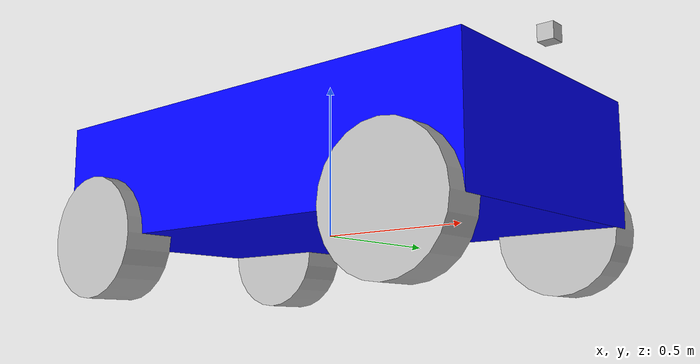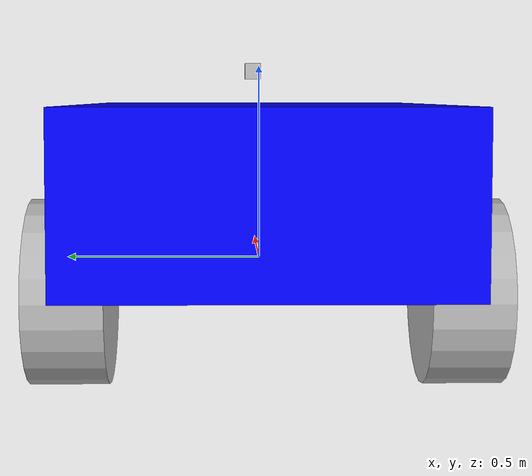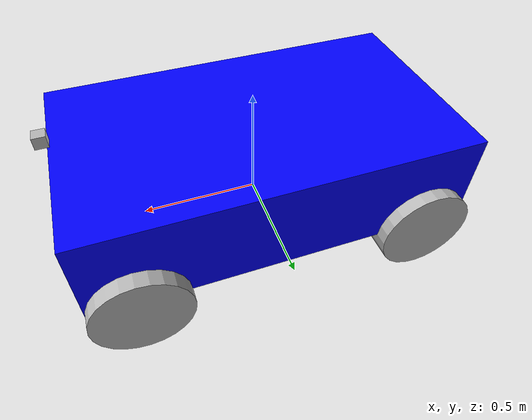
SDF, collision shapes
<?xml version="1.0" ?>
<sdf version="1.8">
  <model name="vehicle_blue" canonical_link="chassis">

    <!-- ================= CHASSIS ================= -->
    <link name="chassis">
      <pose>0 0 0.2 0 0 0</pose>

      <inertial>
        <mass>100</mass>
        <inertia>
          <ixx>2</ixx><ixy>0</ixy><ixz>0</ixz>
          <iyy>4</iyy><iyz>0</iyz><izz>5</izz>
        </inertia>
      </inertial>

      <visual name="chassis_visual">
        <geometry>
          <mesh>
            <!-- CHANGE filename if needed -->
            <uri>file:///home/deyung/ros2_newws/src/robot_description/description/meshes/new_car_chassis.stl</uri>
            <scale>0.5 0.5 0.5</scale>
          </mesh>
        </geometry>
        <material>
          <ambient>0 0 1 1</ambient>
          <diffuse>0 0 1 1</diffuse>
        </material>
      </visual>

      <!-- Use a simple collision for stability -->
      <collision name="chassis_collision">
        <geometry>
          <box>
            <size>1.6 0.9 0.4</size>
          </box>
        </geometry>
      </collision>

      <sensor name="imu_sensor" type="imu">
        <always_on>true</always_on>
        <update_rate>50</update_rate>
        <topic>imu</topic>
      </sensor>
    </link>

    <!-- ================= REAR WHEELS ================= -->
    <link name="rear_left_wheel">
      <pose>-0.6 0.42 0 1.5708 1.5708 0</pose>
      <inertial>
        <mass>7</mass>
        <inertia>
          <ixx>0.086</ixx><ixy>0</ixy><ixz>0</ixz>
          <iyy>0.086</iyy><iyz>0</iyz><izz>0.14</izz>
        </inertia>
      </inertial>

      <visual name="rear_left_wheel_visual">
        <geometry>
          <cylinder>
            <radius>0.2</radius>
            <length>0.17</length>
          </cylinder>
        </geometry>
      </visual>

      <collision name="rear_left_wheel_collision">
        <geometry>
          <cylinder>
            <radius>0.2</radius>
            <length>0.17</length>
          </cylinder>
        </geometry>
      </collision>
    </link>

    <link name="rear_right_wheel">
      <pose>-0.6 -0.42 0 1.5708 1.5708 0</pose>
      <inertial>
        <mass>7</mass>
        <inertia>
          <ixx>0.086</ixx><ixy>0</ixy><ixz>0</ixz>
          <iyy>0.086</iyy><iyz>0</iyz><izz>0.14</izz>
        </inertia>
      </inertial>

      <visual name="rear_right_wheel_visual">
        <geometry>
          <cylinder>
            <radius>0.2</radius>
            <length>0.17</length>
          </cylinder>
        </geometry>
      </visual>

      <collision name="rear_right_wheel_collision">
        <geometry>
          <cylinder>
            <radius>0.2</radius>
            <length>0.17</length>
          </cylinder>
        </geometry>
      </collision>
    </link>

    <!-- ================= FRONT STEERING LINKS ================= -->
    <link name="front_left_steering_link">
      <pose>0.6 0.45 0 0 0 0</pose>
      <inertial>
        <mass>0.5</mass>
        <inertia>
          <ixx>0.015</ixx><ixy>0</ixy><ixz>0</ixz>
          <iyy>0.025</iyy><iyz>0</iyz><izz>0.015</izz>
        </inertia>
      </inertial>

      <visual name="front_left_steering_link_visual">
        <geometry>
          <box><size>0.05 0.05 0.05</size></box>
        </geometry>
      </visual>

      <collision name="front_left_steering_link_collision">
        <geometry>
          <box><size>0.05 0.05 0.05</size></box>
        </geometry>
      </collision>
    </link>

    <link name="front_right_steering_link">
      <pose>0.6 -0.45 0 0 0 0</pose>
      <inertial>
        <mass>0.5</mass>
        <inertia>
          <ixx>0.015</ixx><ixy>0</ixy><ixz>0</ixz>
          <iyy>0.025</iyy><iyz>0</iyz><izz>0.015</izz>
        </inertia>
      </inertial>

      <visual name="front_right_steering_link_visual">
        <geometry>
          <box><size>0.05 0.05 0.05</size></box>
        </geometry>
      </visual>

      <collision name="front_right_steering_link_collision">
        <geometry>
          <box><size>0.05 0.05 0.05</size></box>
        </geometry>
      </collision>
    </link>

    <!-- ================= FRONT WHEELS ================= -->
    <link name="front_left_wheel">
      <!-- relative to steering link; keep centered on that link -->
      <pose>0.6 -0.45 0 1.5708 1.5708 0</pose>

      <inertial>
        <mass>5</mass>
        <inertia>
          <ixx>0.057</ixx><ixy>0</ixy><ixz>0</ixz>
          <iyy>0.057</iyy><iyz>0</iyz><izz>0.1</izz>
        </inertia>
      </inertial>

      <visual name="front_left_wheel_visual">
        <geometry>
          <cylinder>
            <radius>0.2</radius>
            <length>0.13</length>
          </cylinder>
        </geometry>
      </visual>

      <collision name="front_left_wheel_collision">
        <geometry>
          <cylinder>
            <radius>0.2</radius>
            <length>0.13</length>
          </cylinder>
        </geometry>
      </collision>
    </link>

    <link name="front_right_wheel">
      <pose>0.6 0.45 0 1.5708 1.5708 0</pose>

      <inertial>
        <mass>5</mass>
        <inertia>
          <ixx>0.057</ixx><ixy>0</ixy><ixz>0</ixz>
          <iyy>0.057</iyy><iyz>0</iyz><izz>0.1</izz>
        </inertia>
      </inertial>

      <visual name="front_right_wheel_visual">
        <geometry>
          <cylinder>
            <radius>0.2</radius>
            <length>0.13</length>
          </cylinder>
        </geometry>
      </visual>

      <collision name="front_right_wheel_collision">
        <geometry>
          <cylinder>
            <radius>0.2</radius>
            <length>0.13</length>
          </cylinder>
        </geometry>
      </collision>
    </link>
    <link name="lidar_link">
  <!-- position relative to chassis center -->
      <pose>0.8 0 0.5 0 0 0</pose>

      <visual name="lidar_visual">
        <geometry><box><size>0.05 0.05 0.05</size></box></geometry>
      </visual>

      <collision name="lidar_collision">
        <geometry><box><size>0.05 0.05 0.05</size></box></geometry>
      </collision>

      <sensor name="lidar" type="gpu_lidar">
        <always_on>true</always_on>
        <update_rate>10</update_rate>
        <topic>/scan</topic>
        <ray>
          <scan>
            <horizontal>
              <samples>720</samples>
              <resolution>1</resolution>
              <min_angle>-3.14159</min_angle>
              <max_angle>3.14159</max_angle>
            </horizontal>
          </scan>
          <range>
            <min>0.12</min>
            <max>30.0</max>
            <resolution>0.01</resolution>
          </range>
        </ray>
      </sensor>
    </link>
    <joint name="lidar_joint" type="fixed">
      <parent>chassis</parent>
      <child>lidar_link</child>
    </joint>

    <!-- ================= JOINTS ================= -->
    <joint name="rear_left_wheel_joint" type="revolute">
      <parent>chassis</parent>
      <child>rear_left_wheel</child>
      <axis><xyz>0 0 -1</xyz></axis>
    </joint>

    <joint name="rear_right_wheel_joint" type="revolute">
      <parent>chassis</parent>
      <child>rear_right_wheel</child>
      <axis><xyz>0 0 -1</xyz></axis>
    </joint>

    <joint name="front_left_steering_joint" type="revolute">
      <parent>chassis</parent>
      <child>front_left_steering_link</child>
      <axis><xyz>0 0 1</xyz></axis>
    </joint>

    <joint name="front_right_steering_joint" type="revolute">
      <parent>chassis</parent>
      <child>front_right_steering_link</child>
      <axis><xyz>0 0 1</xyz></axis>
    </joint>

    <joint name="front_left_wheel_joint" type="revolute">
      <parent>front_left_steering_link</parent>
      <child>front_left_wheel</child>
      <axis><xyz>0 0 -1</xyz></axis>
    </joint>

    <joint name="front_right_wheel_joint" type="revolute">
      <parent>front_right_steering_link</parent>
      <child>front_right_wheel</child>
      <axis><xyz>0 0 -1</xyz></axis>
    </joint>

    <!-- ================= ACKERMANN PLUGIN ================= -->
   <plugin filename="libgz-sim-ackermann-steering-system.so"
        name="gz::sim::systems::AckermannSteering">

     <cmd_vel_topic>/model/newcar/cmd_vel</cmd_vel_topic>

     <left_joint>rear_left_wheel_joint</left_joint>
     <right_joint>rear_right_wheel_joint</right_joint>

     <left_steering_joint>front_left_steering_joint</left_steering_joint>
     <right_steering_joint>front_right_steering_joint</right_steering_joint>

     <wheel_base>1.25</wheel_base>
     <wheel_separation>0.9</wheel_separation>
     <wheel_radius>0.2</wheel_radius>
     <steering_limit>0.5</steering_limit>
   </plugin>

  </model>
</sdf>
